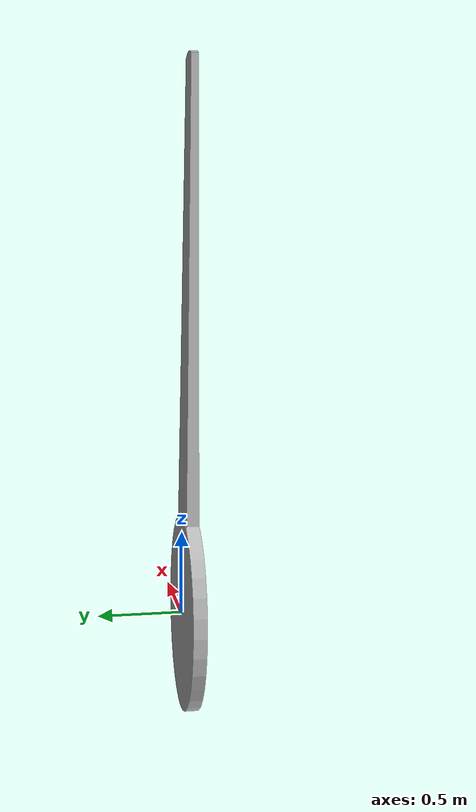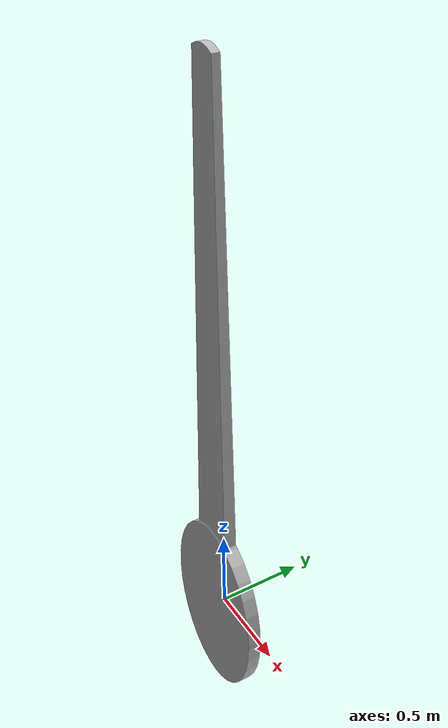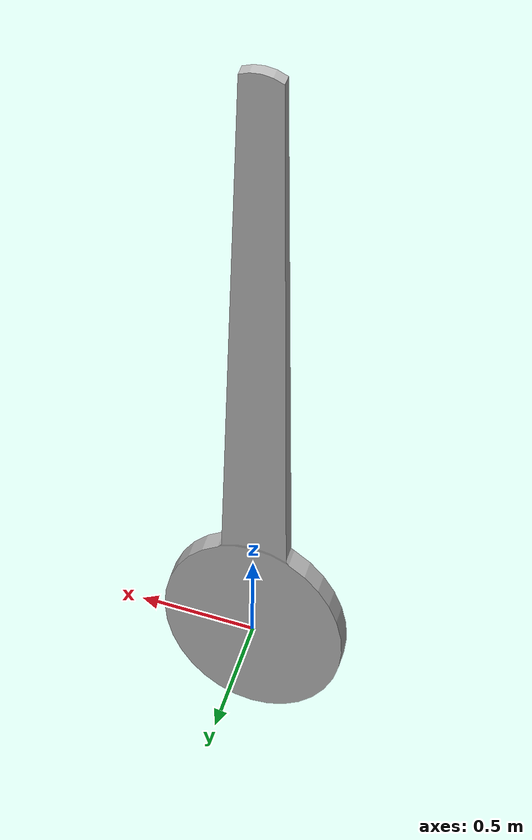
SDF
<?xml version="1.0" ?>
<sdf version="1.7">
	<model name="spoon">
		<link name="base">
			<visual name="spoon_visual">
				<pose>0 0 0 0 0 0</pose>
				<geometry>
					<mesh>
						<scale>1 1 1</scale>
						<uri>meshes/spoon.obj</uri>
					</mesh>
				</geometry>
			</visual>
		</link>
	</model>
</sdf>
